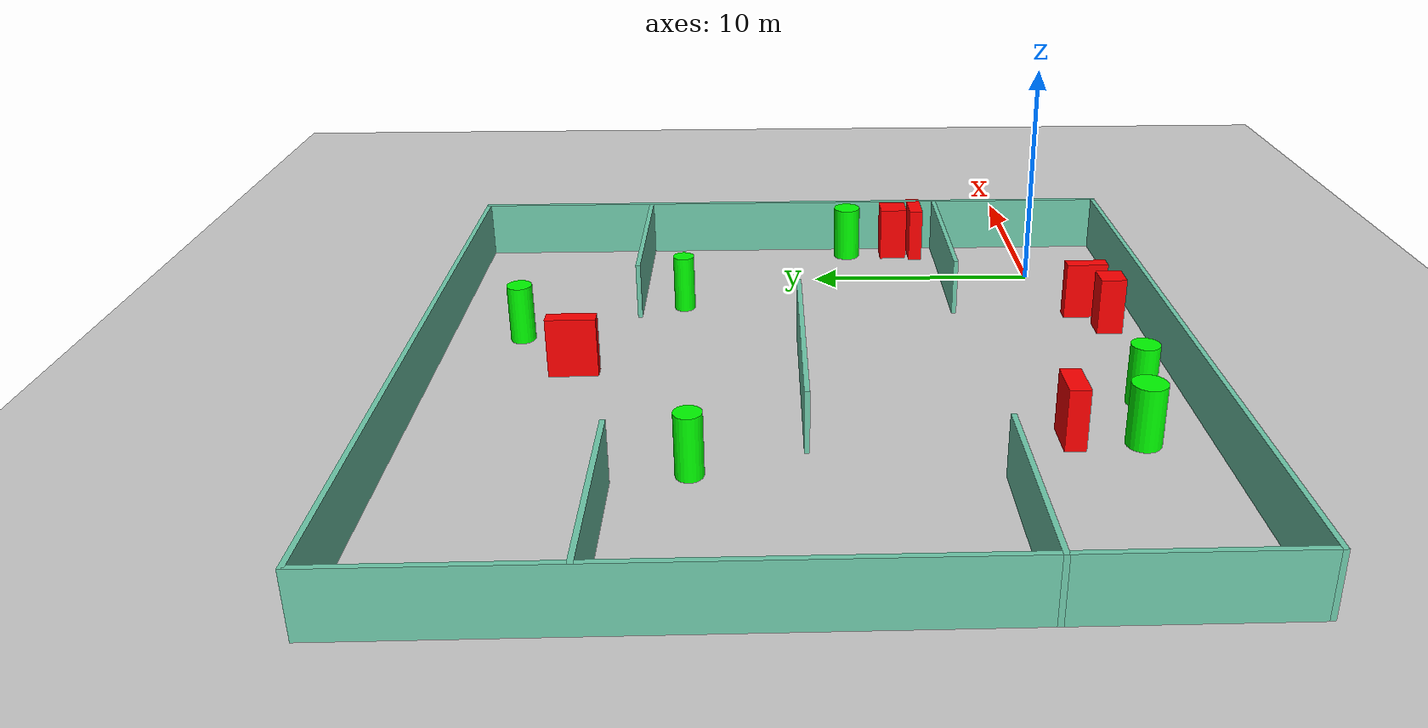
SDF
<sdf version="1.7">
 <world name="default">
  <light name="sun" type="directional">
   <pose>0 0 10 0 -0 0</pose>
   <diffuse>0.8 0.8 0.8 1</diffuse>
   <specular>0.2 0.2 0.2 1</specular>
   <attenuation>
    <range>1000</range>
    <constant>0.9</constant>
    <linear>0.01</linear>
    <quadratic>0.001</quadratic>
   </attenuation>
   <direction>-0.5 0.1 -0.9</direction>
   <spot><inner_angle>0</inner_angle><outer_angle>0</outer_angle><falloff>0</falloff></spot>
  </light>
  <model name="ground_plane">
   <static>1</static>
   <link name="link">
    <collision name="collision">
     <geometry><plane><normal>0 0 1</normal><size>100 100</size></plane></geometry>
     <surface>
      <contact><collide_bitmask>65535</collide_bitmask></contact>
      <friction><ode><mu>100</mu><mu2>50</mu2></ode></friction>
     </surface>
    </collision>
    <visual name="visual">
     <cast_shadows>0</cast_shadows>
     <geometry><plane><normal>0 0 1</normal><size>100 100</size></plane></geometry>
     <material>
      <script><uri>file://media/materials/scripts/gazebo.material</uri><name>Gazebo/Grey</name></script>
     </material>
    </visual>
   </link>
  </model>
  <gravity>0 0 -9.8</gravity>
  <magnetic_field>6e-06 2.3e-05 -4.2e-05</magnetic_field>
  <atmosphere type="adiabatic"/>
  <physics type="ode">
   <max_step_size>0.001</max_step_size>
   <real_time_factor>1</real_time_factor>
   <real_time_update_rate>1000</real_time_update_rate>
  </physics>
  <scene><ambient>0.4 0.4 0.4 1</ambient><background>0.7 0.7 0.7 1</background><shadows>1</shadows></scene>
  <spherical_coordinates>
   <surface_model>EARTH_WGS84</surface_model>
   <latitude_deg>0</latitude_deg>
   <longitude_deg>0</longitude_deg>
   <elevation>0</elevation>
   <heading_deg>0</heading_deg>
  </spherical_coordinates>
  <model name="my_base_walls">
   <link name="Wall_10">
    <collision name="Wall_10_Collision">
     <geometry><box><size>8.2 0.2 2.5</size></box></geometry>
     <pose>0 0 1.25 0 -0 0</pose>
    </collision>
    <visual name="Wall_10_Visual">
     <pose>0 0 1.25 0 -0 0</pose>
     <geometry><box><size>8.2 0.2 2.5</size></box></geometry>
     <material>
      <script><uri>file://media/materials/scripts/gazebo.material</uri><name>Gazebo/Grey</name></script>
      <ambient>0.435294 0.796078 0.67451 1</ambient>
     </material>
     <meta><layer>0</layer></meta>
    </visual>
    <pose>-11 -7 0 0 -0 0</pose>
   </link>
   <link name="Wall_12">
    <collision name="Wall_12_Collision">
     <geometry><box><size>8.2 0.2 2.5</size></box></geometry>
     <pose>0 0 1.25 0 -0 0</pose>
    </collision>
    <visual name="Wall_12_Visual">
     <pose>0 0 1.25 0 -0 0</pose>
     <geometry><box><size>8.2 0.2 2.5</size></box></geometry>
     <material>
      <script><uri>file://media/materials/scripts/gazebo.material</uri><name>Gazebo/Grey</name></script>
      <ambient>0.435294 0.796078 0.67451 1</ambient>
     </material>
     <meta><layer>0</layer></meta>
    </visual>
    <pose>-11 7 0 0 -0 0</pose>
   </link>
   <link name="Wall_14">
    <collision name="Wall_14_Collision">
     <geometry><box><size>8.2 0.2 2.5</size></box></geometry>
     <pose>0 0 1.25 0 -0 0</pose>
    </collision>
    <visual name="Wall_14_Visual">
     <pose>0 0 1.25 0 -0 0</pose>
     <geometry><box><size>8.2 0.2 2.5</size></box></geometry>
     <material>
      <script><uri>file://media/materials/scripts/gazebo.material</uri><name>Gazebo/Grey</name></script>
      <ambient>0.435294 0.796078 0.67451 1</ambient>
     </material>
     <meta><layer>0</layer></meta>
    </visual>
    <pose>11 7 0 0 -0 3.14159</pose>
   </link>
   <link name="Wall_16">
    <collision name="Wall_16_Collision">
     <geometry><box><size>10.2 0.2 2.5</size></box></geometry>
     <pose>0 0 1.25 0 -0 0</pose>
    </collision>
    <visual name="Wall_16_Visual">
     <pose>0 0 1.25 0 -0 0</pose>
     <geometry><box><size>10.2 0.2 2.5</size></box></geometry>
     <material>
      <script><uri>file://media/materials/scripts/gazebo.material</uri><name>Gazebo/Grey</name></script>
      <ambient>0.435294 0.796078 0.67451 1</ambient>
     </material>
     <meta><layer>0</layer></meta>
    </visual>
    <pose>0 0 0 0 -0 3.14159</pose>
   </link>
   <link name="Wall_2">
    <collision name="Wall_2_Collision">
     <geometry><box><size>30.2 0.2 2.5</size></box></geometry>
     <pose>0 0 1.25 0 -0 0</pose>
    </collision>
    <visual name="Wall_2_Visual">
     <pose>0 0 1.25 0 -0 0</pose>
     <geometry><box><size>30.2 0.2 2.5</size></box></geometry>
     <material>
      <script><uri>file://media/materials/scripts/gazebo.material</uri><name>Gazebo/Grey</name></script>
      <ambient>0.435294 0.796078 0.67451 1</ambient>
     </material>
     <meta><layer>0</layer></meta>
    </visual>
    <pose>0 -15 0 0 -0 3.14159</pose>
   </link>
   <link name="Wall_3">
    <collision name="Wall_3_Collision">
     <geometry><box><size>30.2 0.2 2.5</size></box></geometry>
     <pose>0 0 1.25 0 -0 0</pose>
    </collision>
    <visual name="Wall_3_Visual">
     <pose>0 0 1.25 0 -0 0</pose>
     <geometry><box><size>30.2 0.2 2.5</size></box></geometry>
     <material>
      <script><uri>file://media/materials/scripts/gazebo.material</uri><name>Gazebo/Grey</name></script>
      <ambient>0.435294 0.796078 0.67451 1</ambient>
     </material>
     <meta><layer>0</layer></meta>
    </visual>
    <pose>-15 0 0 0 -0 1.5708</pose>
   </link>
   <link name="Wall_4">
    <collision name="Wall_4_Collision">
     <geometry><box><size>30.2 0.2 2.5</size></box></geometry>
     <pose>0 0 1.25 0 -0 0</pose>
    </collision>
    <visual name="Wall_4_Visual">
     <pose>0 0 1.25 0 -0 0</pose>
     <geometry><box><size>30.2 0.2 2.5</size></box></geometry>
     <material>
      <script><uri>file://media/materials/scripts/gazebo.material</uri><name>Gazebo/Grey</name></script>
      <ambient>0.435294 0.796078 0.67451 1</ambient>
     </material>
     <meta><layer>0</layer></meta>
    </visual>
    <pose>0 15 0 0 -0 0</pose>
   </link>
   <link name="Wall_6">
    <collision name="Wall_6_Collision">
     <geometry><box><size>30.2 0.2 2.5</size></box></geometry>
     <pose>0 0 1.25 0 -0 0</pose>
    </collision>
    <visual name="Wall_6_Visual">
     <pose>0 0 1.25 0 -0 0</pose>
     <geometry><box><size>30.2 0.2 2.5</size></box></geometry>
     <material>
      <script><uri>file://media/materials/scripts/gazebo.material</uri><name>Gazebo/Grey</name></script>
      <ambient>0.435294 0.796078 0.67451 1</ambient>
     </material>
     <meta><layer>0</layer></meta>
    </visual>
    <pose>15 0 0 0 -0 1.5708</pose>
   </link>
   <link name="Wall_8">
    <collision name="Wall_8_Collision">
     <geometry><box><size>8.2 0.2 2.5</size></box></geometry>
     <pose>0 0 1.25 0 -0 0</pose>
    </collision>
    <visual name="Wall_8_Visual">
     <pose>0 0 1.25 0 -0 0</pose>
     <geometry><box><size>8.2 0.2 2.5</size></box></geometry>
     <material>
      <script><uri>file://media/materials/scripts/gazebo.material</uri><name>Gazebo/Grey</name></script>
      <ambient>0.435294 0.796078 0.67451 1</ambient>
     </material>
     <meta><layer>0</layer></meta>
    </visual>
    <pose>11 -7 0 0 -0 3.14159</pose>
   </link>
   <static>1</static>
   <pose>-11 11 0 0 -0 0</pose>
  </model>
  <model name="cylinder1">
   <static>1</static>
   <link name="link">
    <inertial>
     <mass>1</mass>
     <inertia><ixx>0.5</ixx><ixy>0</ixy><ixz>0</ixz><iyy>0.5</iyy><iyz>0</iyz><izz>1</izz></inertia>
    </inertial>
    <collision name="collision">
     <geometry><cylinder><radius>0.6722084381699045</radius><length>2.5</length></cylinder></geometry>
    </collision>
    <visual name="visual">
     <geometry><cylinder><radius>0.6722084381699045</radius><length>2.5</length></cylinder></geometry>
     <material>
      <ambient>0 1 0 1</ambient>
      <diffuse>0 1 0 1</diffuse>
      <specular>0.1 0.1 0.1 1</specular>
      <emissive>0 0 0 0</emissive>
     </material>
    </visual>
   </link>
   <pose>-15.823157706568068 -1.3053657727858359 1.25 0 0 0</pose>
  </model>
  <model name="cylinder2">
   <static>1</static>
   <link name="link">
    <inertial>
     <mass>1</mass>
     <inertia><ixx>0.5</ixx><ixy>0</ixy><ixz>0</ixz><iyy>0.5</iyy><iyz>0</iyz><izz>1</izz></inertia>
    </inertial>
    <collision name="collision">
     <geometry><cylinder><radius>0.45591836835061184</radius><length>2.5</length></cylinder></geometry>
    </collision>
    <visual name="visual">
     <geometry><cylinder><radius>0.45591836835061184</radius><length>2.5</length></cylinder></geometry>
     <material>
      <ambient>0 1 0 1</ambient>
      <diffuse>0 1 0 1</diffuse>
      <specular>0.1 0.1 0.1 1</specular>
      <emissive>0 0 0 0</emissive>
     </material>
    </visual>
   </link>
   <pose>-3.0814860312449817 16.056045630847322 1.25 0 0 0</pose>
  </model>
  <model name="cylinder3">
   <static>1</static>
   <link name="link">
    <inertial>
     <mass>1</mass>
     <inertia><ixx>0.5</ixx><ixy>0</ixy><ixz>0</ixz><iyy>0.5</iyy><iyz>0</iyz><izz>1</izz></inertia>
    </inertial>
    <collision name="collision">
     <geometry><cylinder><radius>0.6150865898885618</radius><length>2.5</length></cylinder></geometry>
    </collision>
    <visual name="visual">
     <geometry><cylinder><radius>0.6150865898885618</radius><length>2.5</length></cylinder></geometry>
     <material>
      <ambient>0 1 0 1</ambient>
      <diffuse>0 1 0 1</diffuse>
      <specular>0.1 0.1 0.1 1</specular>
      <emissive>0 0 0 0</emissive>
     </material>
    </visual>
   </link>
   <pose>3.0555053744998375 8.367503346668528 1.25 0 0 0</pose>
  </model>
  <model name="cylinder4">
   <static>1</static>
   <link name="link">
    <inertial>
     <mass>1</mass>
     <inertia><ixx>0.5</ixx><ixy>0</ixy><ixz>0</ixz><iyy>0.5</iyy><iyz>0</iyz><izz>1</izz></inertia>
    </inertial>
    <collision name="collision">
     <geometry><cylinder><radius>0.5719134370992174</radius><length>2.5</length></cylinder></geometry>
    </collision>
    <visual name="visual">
     <geometry><cylinder><radius>0.5719134370992174</radius><length>2.5</length></cylinder></geometry>
     <material>
      <ambient>0 1 0 1</ambient>
      <diffuse>0 1 0 1</diffuse>
      <specular>0.1 0.1 0.1 1</specular>
      <emissive>0 0 0 0</emissive>
     </material>
    </visual>
   </link>
   <pose>-12.666469561943712 -2.039911537771466 1.25 0 0 0</pose>
  </model>
  <model name="cylinder5">
   <static>1</static>
   <link name="link">
    <inertial>
     <mass>1</mass>
     <inertia><ixx>0.5</ixx><ixy>0</ixy><ixz>0</ixz><iyy>0.5</iyy><iyz>0</iyz><izz>1</izz></inertia>
    </inertial>
    <collision name="collision">
     <geometry><cylinder><radius>0.528496103371806</radius><length>2.5</length></cylinder></geometry>
    </collision>
    <visual name="visual">
     <geometry><cylinder><radius>0.528496103371806</radius><length>2.5</length></cylinder></geometry>
     <material>
      <ambient>0 1 0 1</ambient>
      <diffuse>0 1 0 1</diffuse>
      <specular>0.1 0.1 0.1 1</specular>
      <emissive>0 0 0 0</emissive>
     </material>
    </visual>
   </link>
   <pose>-6.146845002038528 22.812100497698776 1.25 0 0 0</pose>
  </model>
  <model name="cylinder6">
   <static>1</static>
   <link name="link">
    <inertial>
     <mass>1</mass>
     <inertia><ixx>0.5</ixx><ixy>0</ixy><ixz>0</ixz><iyy>0.5</iyy><iyz>0</iyz><izz>1</izz></inertia>
    </inertial>
    <collision name="collision">
     <geometry><cylinder><radius>0.5242451138328483</radius><length>2.5</length></cylinder></geometry>
    </collision>
    <visual name="visual">
     <geometry><cylinder><radius>0.5242451138328483</radius><length>2.5</length></cylinder></geometry>
     <material>
      <ambient>0 1 0 1</ambient>
      <diffuse>0 1 0 1</diffuse>
      <specular>0.1 0.1 0.1 1</specular>
      <emissive>0 0 0 0</emissive>
     </material>
    </visual>
   </link>
   <pose>-17.462231964620678 15.151842776031167 1.25 0 0 0</pose>
  </model>
  <model name="box1">
   <static>1</static>
   <link name="link">
    <inertial>
     <mass>1</mass>
     <inertia><ixx>0.083</ixx><ixy>0</ixy><ixz>0</ixz><iyy>0.083</iyy><iyz>0</iyz><izz>0.083</izz></inertia>
    </inertial>
    <collision name="collision">
     <geometry><box><size>1.1934288371880921 1.244644270806288 2.5</size></box></geometry>
    </collision>
    <visual name="visual">
     <geometry><box><size>1.1934288371880921 1.244644270806288 2.5</size></box></geometry>
     <material>
      <ambient>1 0 0 1</ambient>
      <diffuse>1 0 0 1</diffuse>
      <specular>0.1 0.1 0.1 1</specular>
      <emissive>0 0 0 0</emissive>
     </material>
    </visual>
    <sensor name="my_contact" type="contact">
     <contact><collision>box_collision</collision><topic>__default_topic__</topic></contact>
    </sensor>
   </link>
   <pose>3.1539078941552425 6.0998151739777455 1.25 0 0 0</pose>
  </model>
  <model name="box2">
   <static>1</static>
   <link name="link">
    <inertial>
     <mass>1</mass>
     <inertia><ixx>0.083</ixx><ixy>0</ixy><ixz>0</ixz><iyy>0.083</iyy><iyz>0</iyz><izz>0.083</izz></inertia>
    </inertial>
    <collision name="collision">
     <geometry><box><size>1.0850776070552173 1.1069733608182295 2.5</size></box></geometry>
    </collision>
    <visual name="visual">
     <geometry><box><size>1.0850776070552173 1.1069733608182295 2.5</size></box></geometry>
     <material>
      <ambient>1 0 0 1</ambient>
      <diffuse>1 0 0 1</diffuse>
      <specular>0.1 0.1 0.1 1</specular>
      <emissive>0 0 0 0</emissive>
     </material>
    </visual>
    <sensor name="my_contact" type="contact">
     <contact><collision>box_collision</collision><topic>__default_topic__</topic></contact>
    </sensor>
   </link>
   <pose>-5.92351438418865 -2.441218407912312 1.25 0 0 0</pose>
  </model>
  <model name="box3">
   <static>1</static>
   <link name="link">
    <inertial>
     <mass>1</mass>
     <inertia><ixx>0.083</ixx><ixy>0</ixy><ixz>0</ixz><iyy>0.083</iyy><iyz>0</iyz><izz>0.083</izz></inertia>
    </inertial>
    <collision name="collision">
     <geometry><box><size>0.644710082350354 2.027193217839106 2.5</size></box></geometry>
    </collision>
    <visual name="visual">
     <geometry><box><size>0.644710082350354 2.027193217839106 2.5</size></box></geometry>
     <material>
      <ambient>1 0 0 1</ambient>
      <diffuse>1 0 0 1</diffuse>
      <specular>0.1 0.1 0.1 1</specular>
      <emissive>0 0 0 0</emissive>
     </material>
    </visual>
    <sensor name="my_contact" type="contact">
     <contact><collision>box_collision</collision><topic>__default_topic__</topic></contact>
    </sensor>
   </link>
   <pose>-9.455333618437914 20.20694234663196 1.25 0 0 0</pose>
  </model>
  <model name="box4">
   <static>1</static>
   <link name="link">
    <inertial>
     <mass>1</mass>
     <inertia><ixx>0.083</ixx><ixy>0</ixy><ixz>0</ixz><iyy>0.083</iyy><iyz>0</iyz><izz>0.083</izz></inertia>
    </inertial>
    <collision name="collision">
     <geometry><box><size>1.7990807201501426 0.6271803742216545 2.5</size></box></geometry>
    </collision>
    <visual name="visual">
     <geometry><box><size>1.7990807201501426 0.6271803742216545 2.5</size></box></geometry>
     <material>
      <ambient>1 0 0 1</ambient>
      <diffuse>1 0 0 1</diffuse>
      <specular>0.1 0.1 0.1 1</specular>
      <emissive>0 0 0 0</emissive>
     </material>
    </visual>
    <sensor name="my_contact" type="contact">
     <contact><collision>box_collision</collision><topic>__default_topic__</topic></contact>
    </sensor>
   </link>
   <pose>3.2786923728588455 5.023163997426176 1.25 0 0 0</pose>
  </model>
  <model name="box5">
   <static>1</static>
   <link name="link">
    <inertial>
     <mass>1</mass>
     <inertia><ixx>0.083</ixx><ixy>0</ixy><ixz>0</ixz><iyy>0.083</iyy><iyz>0</iyz><izz>0.083</izz></inertia>
    </inertial>
    <collision name="collision">
     <geometry><box><size>1.7099986744959652 0.8142688132066656 2.5</size></box></geometry>
    </collision>
    <visual name="visual">
     <geometry><box><size>1.7099986744959652 0.8142688132066656 2.5</size></box></geometry>
     <material>
      <ambient>1 0 0 1</ambient>
      <diffuse>1 0 0 1</diffuse>
      <specular>0.1 0.1 0.1 1</specular>
      <emissive>0 0 0 0</emissive>
     </material>
    </visual>
    <sensor name="my_contact" type="contact">
     <contact><collision>box_collision</collision><topic>__default_topic__</topic></contact>
    </sensor>
   </link>
   <pose>-15.461578500508235 1.3065589604147139 1.25 0 0 0</pose>
  </model>
  <model name="box6">
   <static>1</static>
   <link name="link">
    <inertial>
     <mass>1</mass>
     <inertia><ixx>0.083</ixx><ixy>0</ixy><ixz>0</ixz><iyy>0.083</iyy><iyz>0</iyz><izz>0.083</izz></inertia>
    </inertial>
    <collision name="collision">
     <geometry><box><size>0.5853668826574608 1.798049924654078 2.5</size></box></geometry>
    </collision>
    <visual name="visual">
     <geometry><box><size>0.5853668826574608 1.798049924654078 2.5</size></box></geometry>
     <material>
      <ambient>1 0 0 1</ambient>
      <diffuse>1 0 0 1</diffuse>
      <specular>0.1 0.1 0.1 1</specular>
      <emissive>0 0 0 0</emissive>
     </material>
    </visual>
    <sensor name="my_contact" type="contact">
     <contact><collision>box_collision</collision><topic>__default_topic__</topic></contact>
    </sensor>
   </link>
   <pose>-4.420876091354481 -1.722133431412272 1.25 0 0 0</pose>
  </model>
 </world>
</sdf>
